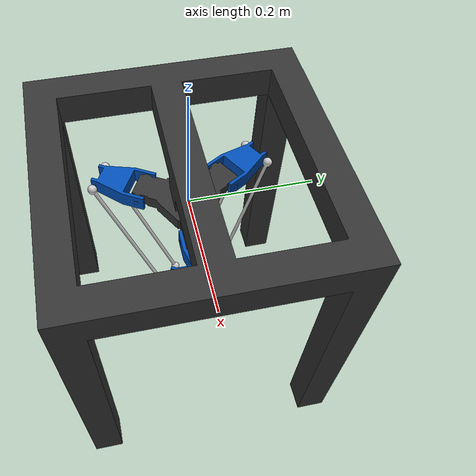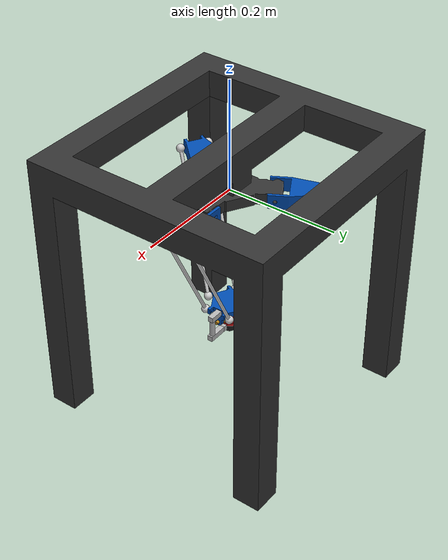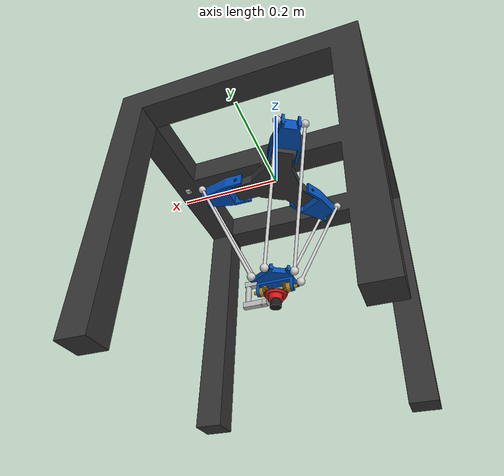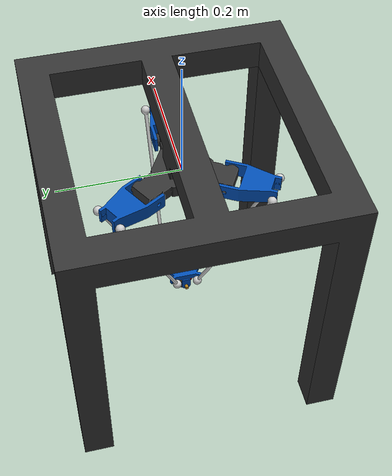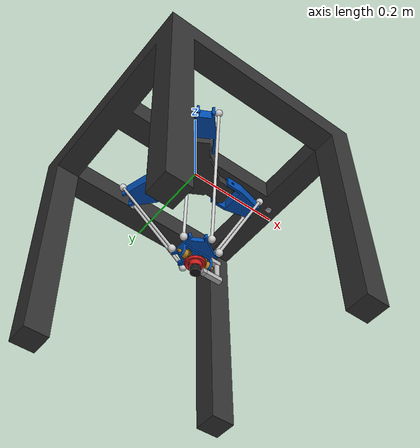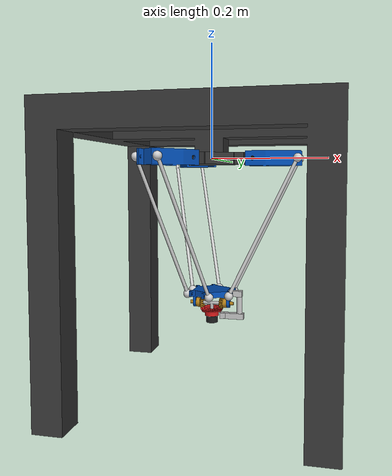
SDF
<?xml version="1.0"?>
<sdf version="1.6">
    <model name="delta_robot">
        <static>false</static>
        <self_collide>false</self_collide>

        <!-- ALL LINKS SECTION -->
        <link name="world_link" />
        <link name="base_link">
            <self_collide>false</self_collide>
            <pose>0.0 0.0 -0.059453642384105956 0.0 -0.0 0.0</pose>
            <inertial>
                <pose>0.0 0.0 0.0 0 0 0</pose>
                <mass>74.084375</mass>
                <inertia>
                    <ixx>4.027796531155149</ixx>
                    <ixy>0.0</ixy>
                    <ixz>0</ixz>
                    <iyy>4.096484031155156</iyy>
                    <iyz>0</iyz>
                    <izz>4.613305989583342</izz>
                </inertia>
            </inertial>
            <collision name="base_link_collision">
                <geometry>
                    <mesh>
                        <uri>package://delta_robot_description/meshes/base_link.stl</uri>
                        <scale>0.001 0.001 0.001</scale>
                    </mesh>
                </geometry>
            </collision>
            <visual name="base_link_visual">
                <geometry>
                    <mesh>
                        <uri>package://delta_robot_description/meshes/base_link.stl</uri>
                        <scale>0.001 0.001 0.001</scale>
                    </mesh>
                </geometry>
                <material>
                    <ambient>0.2 0.2 0.2 1</ambient>
                    <diffuse>0.2 0.2 0.2 1</diffuse>
                    <specular>0.5 0.5 0.5 1</specular>
                </material>
            </visual>
        </link>
        <link name="base_hex">
            <self_collide>false</self_collide>
            <pose>0 0 0 0 0 0</pose>
            <inertial>
                <pose>0 0 0 0 0 0</pose>
                <mass>1.9047631520333201</mass>
                <inertia>
                    <ixx>0.0026031670857326853</ixx>
                    <ixy>0</ixy>
                    <ixz>0</ixz>
                    <iyy>0.0026031670857326857</iyy>
                    <iyz>0</iyz>
                    <izz>0.00507804487380368</izz>
                </inertia>
            </inertial>
            <visual name="base_visual">
                <geometry>
                    <mesh>
                        <uri>package://delta_robot_description/meshes/base.stl</uri>
                        <scale>0.001 0.001 0.001</scale>
                    </mesh>
                </geometry>
                <material>
                    <ambient>0.2 0.2 0.2 1</ambient>
                    <diffuse>0.2 0.2 0.2 1</diffuse>
                    <specular>0.5 0.5 0.5 1</specular>
                </material>
            </visual>
        </link>
        <link name="eye_to_hand_cam">
            <pose relative_to="base_hex">0.2 0 0.035 0 1.5708 0</pose>
            <inertial>
                <mass>0.0001</mass>
                <inertia>
                    <ixx>1e-9</ixx>
                    <ixy>0</ixy>
                    <ixz>0</ixz>
                    <iyy>1e-9</iyy>
                    <iyz>0</iyz>
                    <izz>1e-9</izz>
                </inertia>
            </inertial>
            <collision name="camera_collision">
                <geometry>
                    <box>
                        <size>0.01 0.01 0.01</size>
                    </box>
                </geometry>
            </collision>
            <visual name="camera_visual">
                <geometry>
                    <box>
                        <size>0.01 0.01 0.01</size>
                    </box>
                </geometry>
            </visual>
            <sensor name="camera1" type="camera">
                <pose>0 0 0 0 0 0</pose>
                <topic>camera1/image_raw</topic>
                <update_rate>60.0</update_rate>
                <camera name="head1">
                    <horizontal_fov>1.3962634</horizontal_fov>
                    <image>
                        <width>800</width>
                        <height>800</height>
                        <format>R8G8B8</format>
                    </image>
                    <clip>
                        <near>0.02</near>
                        <far>300</far>
                    </clip>
                    <noise>
                        <type>gaussian</type>
                        <mean>0.0</mean>
                        <stddev>0.007</stddev>
                    </noise>
                </camera>
            </sensor>
        </link>
        <link name="forearm1">
            <self_collide>false</self_collide>
            <pose>0.07582126761579139 0.02650000029802317 0 0 0 0</pose>
            <inertial>
                <pose>0.0 0.0 0.0 0 0 0</pose>
                <mass>0.5187511910834867</mass>
                <inertia>
                    <ixx>0.00015919261328275726</ixx>
                    <ixy>0</ixy>
                    <ixz>0</ixz>
                    <iyy>0.00022207744067771388</iyy>
                    <iyz>0</iyz>
                    <izz>0.00032753770757601333</izz>
                </inertia>
            </inertial>
            <visual name="forearm1_visual">
                <pose>0.041901939908467044 -0.02578501478731749 0 0 0 0</pose>
                <geometry>
                    <mesh>
                        <uri>package://delta_robot_description/meshes/forearm1.stl</uri>
                        <scale>0.001 0.001 0.001</scale>
                    </mesh>
                </geometry>
                <material>
                    <ambient>0.0 0.3 0.7 1</ambient>
                    <diffuse>0.0 0.3 0.7 1</diffuse>
                    <specular>0.8 0.8 0.8 1</specular>
                </material>
            </visual>
        </link>
        <link name="forearm2">
            <self_collide>false</self_collide>
            <pose>-0.060860307266279 0.052413143753402 0 0 0 0</pose>
            <inertial>
                <pose>0.0 0.0 0.0 0 0 0</pose>
                <mass>0.51875119107172</mass>
                <inertia>
                    <ixx>0.00020635611231124287</ixx>
                    <ixy>2.722999916731084e-05</ixy>
                    <ixz>0</ixz>
                    <iyy>0.00017491394163174725</iyy>
                    <iyz>0</iyz>
                    <izz>0.000327537707552888</izz>
                </inertia>
            </inertial>
            <visual name="forearm2_visual">
                <pose>0.0013795078890995872 0.049180651821708 0 0 0 0</pose>
                <geometry>
                    <mesh>
                        <uri>package://delta_robot_description/meshes/forearm2.stl</uri>
                        <scale>0.001 0.001 0.001</scale>
                    </mesh>
                </geometry>
                <material>
                    <ambient>0.0 0.3 0.7 1</ambient>
                    <diffuse>0.0 0.3 0.7 1</diffuse>
                    <specular>0.8 0.8 0.8 1</specular>
                </material>
            </visual>
        </link>
        <link name="forearm3">
            <self_collide>false</self_collide>
            <pose>-0.014960960349512404 -0.07891314405142537 0.0 0 0 0</pose>
            <inertial>
                <pose>0.0 0.0 0.0 0 0 0</pose>
                <mass>0.518751191076026</mass>
                <inertia>
                    <ixx>0.0002063563553324457</ixx>
                    <ixy>-2.7229858861725022e-05</ixy>
                    <ixz>0</ixz>
                    <iyy>0.0001749136986178364</iyy>
                    <iyz>0</iyz>
                    <izz>0.00032753770756010993</izz>
                </inertia>
            </inertial>
            <visual name="forearm3_visual">
                <pose>-0.043281447796773696 -0.02339563703450904 0.0 0 0 0</pose>
                <geometry>
                    <mesh>
                        <uri>package://delta_robot_description/meshes/forearm3.stl</uri>
                        <scale>0.001 0.001 0.001</scale>
                    </mesh>
                </geometry>
                <material>
                    <ambient>0.0 0.3 0.7 1</ambient>
                    <diffuse>0.0 0.3 0.7 1</diffuse>
                    <specular>0.8 0.8 0.8 1</specular>
                </material>
            </visual>
        </link>

        <link name="arm1">
            <self_collide>false</self_collide>
            <pose>0.150821276752066 -0.0247850007972447853 0.00000000000000001 0 0 0</pose>
            <inertial>
                <pose>0.0 0.0 0.0 0 0 0</pose>
                <mass>0.08501792510863404</mass>
                <inertia>
                    <ixx>0.0006610833522394115</ixx>
                    <ixy>0</ixy>
                    <ixz>-0.00032162896696378846</ixz>
                    <iyy>0.0008177639729221635</iyy>
                    <iyz>0</iyz>
                    <izz>0.00015756561652582377</izz>
                </inertia>
            </inertial>
            <visual name="arm1_visual">
                <pose>-0.05775519384269504 -0.0003574989405490747 -0.11855347169928133 0 0 0</pose>
                <geometry>
                    <mesh>
                        <uri>package://delta_robot_description/meshes/arm1.stl</uri>
                        <scale>0.001 0.001 0.001</scale>
                    </mesh>
                </geometry>
                <material>
                    <ambient>0.8 0.8 0.8 1</ambient>
                    <diffuse>0.8 0.8 0.8 1</diffuse>
                    <specular>0.5 0.5 0.5 1</specular>
                </material>
            </visual>
        </link>
        <link name="arm2">
            <self_collide>false</self_collide>
            <pose>0.1508212767520659137 0.0262150008651660243 0.0000000000000000139 0 0 0</pose>
            <inertial>
                <pose>0.0 0.0 0.0 0 0 0</pose>
                <mass>0.08501792510866066</mass>
                <inertia>
                    <ixx>0.0006610833521857737</ixx>
                    <ixy>0</ixy>
                    <ixz>-0.0003216289678737782</ixz>
                    <iyy>0.0008177639737980705</iyy>
                    <iyz>0</iyz>
                    <izz>0.00015756561749766327</izz>
                </inertia>
            </inertial>
            <visual name="arm2_visual">
                <pose>-0.0577551938243513335 -0.0003575000750835722 -0.1185534717523515774 -0 -0 -0</pose>
                <geometry>
                    <mesh>
                        <uri>package://delta_robot_description/meshes/arm2.stl</uri>
                        <scale>0.001 0.001 0.001</scale>
                    </mesh>
                </geometry>
                <material>
                    <ambient>0.8 0.8 0.8 1</ambient>
                    <diffuse>0.8 0.8 0.8 1</diffuse>
                    <specular>0.5 0.5 0.5 1</specular>
                </material>
            </visual>
        </link>
        <link name="arm3">
            <self_collide>false</self_collide>
            <pose>-0.053946198052802014 0.14300755749712088 0.000000000000000014 0 0 0</pose>
            <inertial>
                <pose>0.0 0.0 0.0 0 0 0</pose>
                <mass>0.08501792510896487</mass>
                <inertia>
                    <ixx>0.0007777538800039391</ixx>
                    <ixy>6.832963731447462e-05</ixy>
                    <ixz>0.00016253861417716366</ixz>
                    <iyy>0.0007010934438627217</iyy>
                    <iyz>-0.00027754342934095954</iyz>
                    <izz>0.00015756561739719226</izz>
                </inertia>
            </inertial>
            <visual name="arm3_visual">
                <pose>0.029187200504109275 -0.04983871541849675 -0.118553471658051079 -0 -0 -0</pose>
                <geometry>
                    <mesh>
                        <uri>package://delta_robot_description/meshes/arm3.stl</uri>
                        <scale>0.001 0.001 0.001</scale>
                    </mesh>
                </geometry>
                <material>
                    <ambient>0.8 0.8 0.8 1</ambient>
                    <diffuse>0.8 0.8 0.8 1</diffuse>
                    <specular>0.5 0.5 0.5 1</specular>
                </material>
            </visual>
        </link>
        <link name="arm4">
            <self_collide>false</self_collide>
            <pose>-0.098113495085500615 0.117507556665914045 0.000000000000000014 0 0 0</pose>
            <inertial>
                <pose>0.0 0.0 0.0 0 0 0</pose>
                <mass>0.0850179251086646</mass>
                <inertia>
                    <ixx>0.000777753878667458</ixx>
                    <ixy>6.832963918442215e-05</ixy>
                    <ixz>0.00016253861925255046</ixz>
                    <iyy>0.0007010934459520924</iyy>
                    <iyz>-0.0002775434281816356</iyz>
                    <izz>0.00015756561901733725</izz>
                </inertia>
            </inertial>
            <visual name="arm4_visual">
                <pose>0.029187201419744097 -0.04983871512278204 -0.118553471622729029 -0 -0 -0</pose>
                <geometry>
                    <mesh>
                        <uri>package://delta_robot_description/meshes/arm4.stl</uri>
                        <scale>0.001 0.001 0.001</scale>
                    </mesh>
                </geometry>
                <material>
                    <ambient>0.8 0.8 0.8 1</ambient>
                    <diffuse>0.8 0.8 0.8 1</diffuse>
                    <specular>0.5 0.5 0.5 1</specular>
                </material>
            </visual>
        </link>
        <link name="arm5">
            <self_collide>false</self_collide>
            <pose>-0.096875078699264386 -0.118222556699869891 0.000000000000000028 0 0 0</pose>
            <inertial>
                <pose>0.0 0.0 0.0 0 0 0</pose>
                <mass>0.08501792510922251</mass>
                <inertia>
                    <ixx>0.000779433754412613</ixx>
                    <ixy>-6.735976148530107e-05</ixy>
                    <ixz>0.00015909035445113126</ixz>
                    <iyy>0.0006994135701053404</iyy>
                    <iyz>0.0002795342829744094</iyz>
                    <izz>0.00015756561726048722</izz>
                </inertia>
            </inertial>
            <visual name="arm5_visual">
                <pose>0.028567993470289876 0.050196214684380139 -0.118553471706085545 -0 -0 -0</pose>
                <geometry>
                    <mesh>
                        <uri>package://delta_robot_description/meshes/arm5.stl</uri>
                        <scale>0.001 0.001 0.001</scale>
                    </mesh>
                </geometry>
                <material>
                    <ambient>0.8 0.8 0.8 1</ambient>
                    <diffuse>0.8 0.8 0.8 1</diffuse>
                    <specular>0.5 0.5 0.5 1</specular>
                </material>
            </visual>
        </link>
        <link name="arm6">
            <self_collide>false</self_collide>
            <pose>-0.05270778166581999 -0.1437225575297798 0.00000000000149622 0 0 0</pose>
            <inertial>
                <pose>0.0 0.0 0.0 0 0 0</pose>
                <mass>0.08501792512900125</mass>
                <inertia>
                    <ixx>0.0007794337586124258</ixx>
                    <ixy>-6.735976102620172e-05</ixy>
                    <ixz>0.00015909035164004187</ixz>
                    <iyy>0.0006994135700703405</iyy>
                    <iyz>0.00027953428658388565</iyz>
                    <izz>0.00015756561862866143</izz>
                </inertia>
            </inertial>
            <visual name="arm6_visual">
                <pose>0.02856799290364426 0.05019621511416267 -0.11855347175941486 -0 -0 -0</pose>
                <geometry>
                    <mesh>
                        <uri>package://delta_robot_description/meshes/arm6.stl</uri>
                        <scale>0.001 0.001 0.001</scale>
                    </mesh>
                </geometry>
                <material>
                    <ambient>0.8 0.8 0.8 1</ambient>
                    <diffuse>0.8 0.8 0.8 1</diffuse>
                    <specular>0.5 0.5 0.5 1</specular>
                </material>
            </visual>
        </link>
        <link name="dummy_arm1">
            <pose relative_to="EEBase">0.035310889540041704 -0.02549999943386602 0 0 0 0</pose>
            <inertial>
                <mass>0.0001</mass>
                <inertia>
                    <ixx>1e-9</ixx>
                    <ixy>0</ixy>
                    <ixz>0</ixz>
                    <iyy>1e-9</iyy>
                    <iyz>0</iyz>
                    <izz>1e-9</izz>
                </inertia>
            </inertial>
        </link>
        <link name="dummy_arm2">
            <pose relative_to="EEBase">0.035310888722048364 0.025500000566133628 0 0 0 0</pose>
            <inertial>
                <mass>0.0001</mass>
                <inertia>
                    <ixx>1e-9</ixx>
                    <ixy>0</ixy>
                    <ixz>0</ixz>
                    <iyy>1e-9</iyy>
                    <iyz>0</iyz>
                    <izz>1e-9</izz>
                </inertia>
            </inertial>
        </link>
        <link name="dummy_arm3">
            <pose relative_to="EEBase">0.004428202533889717 0.043330127089725994 0 0 0 0</pose>
            <inertial>
                <mass>0.0001</mass>
                <inertia>
                    <ixx>1e-9</ixx>
                    <ixy>0</ixy>
                    <ixz>0</ixz>
                    <iyy>1e-9</iyy>
                    <iyz>0</iyz>
                    <izz>1e-9</izz>
                </inertia>
            </inertial>
        </link>
        <link name="dummy_arm4">
            <pose relative_to="EEBase">-0.0397390926501204 0.01783012638132276 0 0 0 0</pose>
            <inertial>
                <mass>0.0001</mass>
                <inertia>
                    <ixx>1e-9</ixx>
                    <ixy>0</ixy>
                    <ixz>0</ixz>
                    <iyy>1e-9</iyy>
                    <iyz>0</iyz>
                    <izz>1e-9</izz>
                </inertia>
            </inertial>
        </link>
        <link name="dummy_arm5">
            <pose relative_to="EEBase">-0.03973909207816269 -0.017830127656521706 0 0 0 0</pose>
            <inertial>
                <mass>0.0001</mass>
                <inertia>
                    <ixx>1e-9</ixx>
                    <ixy>0</ixy>
                    <ixz>0</ixz>
                    <iyy>1e-9</iyy>
                    <iyz>0</iyz>
                    <izz>1e-9</izz>
                </inertia>
            </inertial>
        </link>
        <link name="dummy_arm6">
            <pose relative_to="EEBase">0.004428203923840525 -0.04333012694811848 0 0 0 0</pose>
            <inertial>
                <mass>0.0001</mass>
                <inertia>
                    <ixx>1e-9</ixx>
                    <ixy>0</ixy>
                    <ixz>0</ixz>
                    <iyy>1e-9</iyy>
                    <iyz>0</iyz>
                    <izz>1e-9</izz>
                </inertia>
            </inertial>
        </link>
        <link name="EEBase">
            <self_collide>false</self_collide>
            <pose>0 0 -0.2371069434554458 0.0 -0.0 0.0</pose>
            <inertial>
                <pose>0.0 0.0 0.0 0 0 0</pose>
                <mass>1.3053488104998772</mass>
                <inertia>
                    <ixx>0.00011281937159312463</ixx>
                    <ixy>0</ixy>
                    <ixz>0</ixz>
                    <iyy>0.00011281937159499478</iyy>
                    <iyz>0</iyz>
                    <izz>0.000220801824329689</izz>
                </inertia>
            </inertial>
            <visual name="EEBase_visual">
                <pose>0 0.0 0.0 0 0 0</pose>
                <geometry>
                    <mesh>
                        <uri>package://delta_robot_description/meshes/EEBase.stl</uri>
                        <scale>0.001 0.001 0.001</scale>
                    </mesh>
                </geometry>
                <material>
                    <ambient>0.0 0.3 0.7 1</ambient>
                    <diffuse>0.0 0.3 0.7 1</diffuse>
                    <specular>0.8 0.8 0.8 1</specular>
                </material>
            </visual>
        </link>

        <link name="camera_holder">
            <pose relative_to="EEBase">0.04 0 0 0 0 0</pose>
            <inertial>
                <mass>0.0001</mass>
                <inertia>
                    <ixx>1e-9</ixx>
                    <ixy>0</ixy>
                    <ixz>0</ixz>
                    <iyy>1e-9</iyy>
                    <iyz>0</iyz>
                    <izz>1e-9</izz>
                </inertia>
            </inertial>

            <collision name="camera_holder_collision">
                <geometry>
                    <box>
                        <size>0.03 0.01 0.01</size>
                    </box>
                </geometry>
            </collision>

            <visual name="camera_holder_visual">
                <geometry>
                    <box>
                        <size>0.03 0.01 0.01</size>
                    </box>
                </geometry>
            </visual>
        </link>
        <link name="camera_stick">
            <pose relative_to="camera_holder">0.01 0 -0.02 0 0 0</pose>
            <inertial>
                <mass>0.0001</mass>
                <inertia>
                    <ixx>1e-9</ixx>
                    <ixy>0</ixy>
                    <ixz>0</ixz>
                    <iyy>1e-9</iyy>
                    <iyz>0</iyz>
                    <izz>1e-9</izz>
                </inertia>
            </inertial>

            <collision name="camera_stick_collision">
                <geometry>
                    <cylinder>
                        <radius>0.005</radius>
                        <length>0.035</length>
                    </cylinder>
                </geometry>
            </collision>

            <visual name="camera_stick_visual">
                <geometry>
                    <cylinder>
                        <radius>0.005</radius>
                        <length>0.035</length>
                    </cylinder>
                </geometry>
            </visual>
        </link>
        <link name="camera_bar">
            <pose relative_to="camera_stick">-0.01 0 -0.02 0 0 0</pose>
            <inertial>
                <mass>0.0001</mass>
                <inertia>
                    <ixx>1e-9</ixx>
                    <ixy>0</ixy>
                    <ixz>0</ixz>
                    <iyy>1e-9</iyy>
                    <iyz>0</iyz>
                    <izz>1e-9</izz>
                </inertia>
            </inertial>

            <collision name="camera_bar_collision">
                <geometry>
                    <box>
                        <size>0.035 0.01 0.01</size>
                    </box>
                </geometry>
            </collision>

            <visual name="camera_bar_visual">
                <geometry>
                    <box>
                        <size>0.035 0.01 0.01</size>
                    </box>
                </geometry>
            </visual>
        </link>
        <link name="camera">
            <pose relative_to="camera_bar">-0.02 0 0 0 1.5708 0</pose>
            <inertial>
                <mass>0.0001</mass>
                <inertia>
                    <ixx>1e-9</ixx>
                    <ixy>0</ixy>
                    <ixz>0</ixz>
                    <iyy>1e-9</iyy>
                    <iyz>0</iyz>
                    <izz>1e-9</izz>
                </inertia>
            </inertial>
            <collision name="camera_collision">
                <geometry>
                    <box>
                        <size>0.01 0.01 0.01</size>
                    </box>
                </geometry>
            </collision>
            <visual name="camera_visual">
                <geometry>
                    <box>
                        <size>0.01 0.01 0.01</size>
                    </box>
                </geometry>
            </visual>
            <sensor name="camera1" type="camera">
                <pose>0 0 0 0 0 0</pose>
                <topic>camera/image_raw</topic>
                <update_rate>60.0</update_rate>
                <camera name="head">
                    <horizontal_fov>1.3962634</horizontal_fov>
                    <image>
                        <width>800</width>
                        <height>800</height>
                        <format>R8G8B8</format>
                    </image>
                    <clip>
                        <near>0.02</near>
                        <far>300</far>
                    </clip>
                    <noise>
                        <type>gaussian</type>
                        <mean>0.0</mean>
                        <stddev>0.007</stddev>
                    </noise>
                </camera>
            </sensor>
        </link>

        <link name="Bevel1">
            <self_collide>false</self_collide>
            <pose>0.022598238942588337 0 -0.25555 0.0 -0.0 0.0</pose>
            <inertial>
                <pose>0.0 0.0 0.0 0 0 0</pose>
                <mass>0.022887588344720437</mass>
                <inertia>
                    <ixx>8.160533925641644e-07</ixx>
                    <ixy>0</ixy>
                    <ixz>0</ixz>
                    <iyy>1.0090840794921619e-06</iyy>
                    <iyz>0</iyz>
                    <izz>1.0090818180532715e-06</izz>
                </inertia>
            </inertial>
            <visual name="Bevel1_visual">
                <geometry>
                    <mesh>
                        <uri>package://delta_robot_description/meshes/Bevel1.stl</uri>
                        <scale>0.001 0.001 0.001</scale>
                    </mesh>
                </geometry>
                <material>
                    <ambient>0.7 0.5 0.1 1</ambient>
                    <diffuse>0.7 0.5 0.1 1</diffuse>
                    <specular>0.9 0.9 0.9 1</specular>
                </material>
            </visual>
        </link>
        <link name="Bevel2">
            <self_collide>false</self_collide>
            <pose>-0.022598396462524938 0 -0.25555 0.0 -0.0 0.0</pose>
            <inertial>
                <pose>0.0 0.0 0.0 0 0 0</pose>
                <mass>0.02288830078604533</mass>
                <inertia>
                    <ixx>8.161191467143781e-07</ixx>
                    <ixy>0</ixy>
                    <ixz>0</ixz>
                    <iyy>1.009129701681566e-06</iyy>
                    <iyz>0</iyz>
                    <izz>1.0091285363646813e-06</izz>
                </inertia>
            </inertial>
            <visual name="Bevel2_visual">
                <geometry>
                    <mesh>
                        <uri>package://delta_robot_description/meshes/Bevel2.stl</uri>
                        <scale>0.001 0.001 0.001</scale>
                    </mesh>
                </geometry>
                <material>
                    <ambient>0.7 0.5 0.1 1</ambient>
                    <diffuse>0.7 0.5 0.1 1</diffuse>
                    <specular>0.9 0.9 0.9 1</specular>
                </material>
            </visual>
        </link>
        <link name="T">
            <self_collide>false</self_collide>
            <pose>0.0 0.0 -0.260598116 0.0 -0.0 0.0</pose>
            <inertial>
                <pose>0.0 0.0 0.0 0 0 0</pose>
                <mass>0.014030555092456744</mass>
                <inertia>
                    <ixx>9.053309943784172e-07</ixx>
                    <ixy>0</ixy>
                    <ixz>0</ixz>
                    <iyy>2.1020064052040157e-06</iyy>
                    <iyz>0</iyz>
                    <izz>1.260672827513e-06</izz>
                </inertia>
            </inertial>
            <visual name="T_visual">
                <geometry>
                    <mesh>
                        <uri>package://delta_robot_description/meshes/T.stl</uri>
                        <scale>0.001 0.001 0.001</scale>
                    </mesh>
                </geometry>
                <material>
                    <ambient>0.7 0.7 0.7 1</ambient>
                    <diffuse>0.7 0.7 0.7 1</diffuse>
                    <specular>0.8 0.8 0.8 1</specular>
                </material>
            </visual>
        </link>
        <link name="EE">
            <self_collide>false</self_collide>
            <pose>0.00011235145603943191 0.00018482718621420783 -0.270099331 0.0 -0.0 0.0</pose>
            <inertial>
                <pose>0.0 0.0 0.0 0 0 0</pose>
                <mass>0.061950102367088596</mass>
                <inertia>
                    <ixx>5.594753854607149e-06</ixx>
                    <ixy>0</ixy>
                    <ixz>0</ixz>
                    <iyy>5.5349716777605805e-06</iyy>
                    <iyz>0</iyz>
                    <izz>9.285799729941814e-06</izz>
                </inertia>
            </inertial>
            <visual name="EE_visual">
                <geometry>
                    <mesh>
                        <uri>package://delta_robot_description/meshes/EE.stl</uri>
                        <scale>0.001 0.001 0.001</scale>
                    </mesh>
                </geometry>
                <material>
                    <ambient>0.8 0.1 0.1 1</ambient>
                    <diffuse>0.8 0.1 0.1 1</diffuse>
                    <specular>0.5 0.5 0.5 1</specular>
                    <emissive>0 0 0 1</emissive>
                </material>
            </visual>
        </link>

        <link name="vacuum_gripper">
            <pose relative_to="EE">0 0 -0.01 0 0 0</pose>
            <inertial>
                <mass>0.0001</mass>
                <inertia>
                    <ixx>1e-6</ixx>
                    <ixy>0</ixy>
                    <ixz>0</ixz>
                    <iyy>1e-6</iyy>
                    <iyz>0</iyz>
                    <izz>1e-6</izz>
                </inertia>
            </inertial>
            <visual name="vacuum_gripper_visual">
                <geometry>
                    <cylinder>
                        <radius>0.01</radius>
                        <length>0.02</length>
                    </cylinder>
                </geometry>
                <material>
                    <ambient>0.1 0.1 0.1 1</ambient>
                    <diffuse>0.1 0.1 0.1 1</diffuse>
                </material>
            </visual>
            <collision name="vacuum_gripper_collision">
                <geometry>
                    <cylinder>
                        <radius>0.01</radius>
                        <length>0.02</length>
                    </cylinder>
                </geometry>
            </collision>
        </link>

        <!-- ALL JOINTS SECTION -->
        <joint name="virtual_joint" type="fixed">
            <parent>world_link</parent>
            <child>base_link</child>
        </joint>
        <joint name="base_joint" type="fixed">
            <parent>base_link</parent>
            <child>base_hex</child>
            <pose>0 0 0 0 0 0</pose>
        </joint>

        <joint name="eye_to_hand_cam_joint" type="fixed">
            <parent>base_link</parent>
            <child>eye_to_hand_cam</child>
            <pose>0 0 0 0 0 0</pose>
        </joint>

        <joint name="jbf1" type="revolute">
            <parent>base_hex</parent>
            <child>forearm1</child>
            <pose>0 0 0 0 0 0</pose>
            <axis>
                <xyz>0 1 0</xyz>
                <limit>
                    <lower>-2.007</lower>
                    <upper>2.007</upper>
                    <effort>2.0</effort>
                    <velocity>5.0</velocity>
                </limit>
                <dynamics>
                    <damping>0.1</damping>
                    <friction>0.05</friction>
                </dynamics>
            </axis>
        </joint>
        <joint name="jbf2" type="revolute">
            <parent>base_hex</parent>
            <child>forearm2</child>
            <pose>0 0 0 0 0 0</pose>
            <axis>
                <xyz>-0.866025403784437 -0.5 0</xyz>
                <limit>
                    <lower>-2.007</lower>
                    <upper>2.007</upper>
                    <effort>2.0</effort>
                    <velocity>5.0</velocity>
                </limit>
                <dynamics>
                    <damping>0.1</damping>
                    <friction>0.05</friction>
                </dynamics>
            </axis>
        </joint>
        <joint name="jbf3" type="revolute">
            <parent>base_hex</parent>
            <child>forearm3</child>
            <pose>0.0 0.0 0.0 0 0 0</pose>
            <axis>
                <xyz>0.866025403784438 -0.5 0</xyz>
                <limit>
                    <lower>-2.007</lower>
                    <upper>2.007</upper>
                    <effort>2.0</effort>
                    <velocity>5.0</velocity>
                </limit>
                <dynamics>
                    <damping>0.1</damping>
                    <friction>0.05</friction>
                </dynamics>
            </axis>
        </joint>

        <joint name="ball1" type="ball">
            <parent>forearm1</parent>
            <child>arm1</child>
            <pose>0.0 0.0 0.0 0 0 0</pose>
        </joint>
        <joint name="ball2" type="ball">
            <parent>forearm1</parent>
            <child>arm2</child>
            <pose>0.0 0.0 0.0 0 0 0</pose>
        </joint>
        <joint name="ball3" type="ball">
            <parent>forearm2</parent>
            <child>arm3</child>
            <pose>-0.0 0.0 0.0 0 0 0</pose>
        </joint>
        <joint name="ball4" type="ball">
            <parent>forearm2</parent>
            <child>arm4</child>
            <pose>-0.0 0.0 0.0 0 0 0</pose>
        </joint>
        <joint name="ball5" type="ball">
            <parent>forearm3</parent>
            <child>arm5</child>
            <pose>-0.0 -0.0 0.0 0 0 0</pose>
        </joint>
        <joint name="ball6" type="ball">
            <parent>forearm3</parent>
            <child>arm6</child>
            <pose>-0.0 0.0 0.0 0 0 0</pose>
        </joint>
        <joint name="ball7" type="ball">
            <parent>arm5</parent>
            <child>dummy_arm5</child>
            <pose>-0.0 0.0 0.0 0 0 0</pose>
        </joint>

        <joint name="EEBase_to_dummy1" type="ball">
            <parent>EEBase</parent>
            <child>dummy_arm1</child>
        </joint>
        <joint name="EEBase_to_dummy2" type="ball">
            <parent>EEBase</parent>
            <child>dummy_arm2</child>
        </joint>
        <joint name="EEBase_to_dummy3" type="ball">
            <parent>EEBase</parent>
            <child>dummy_arm3</child>
        </joint>
        <joint name="EEBase_to_dummy4" type="ball">
            <parent>EEBase</parent>
            <child>dummy_arm4</child>
        </joint>
        <joint name="EEBase_to_dummy5" type="fixed">
            <parent>dummy_arm5</parent>
            <child>EEBase</child>
        </joint>
        <joint name="EEBase_to_dummy6" type="ball">
            <parent>EEBase</parent>
            <child>dummy_arm6</child>
        </joint>

        <joint name="camera_joint" type="fixed">
            <parent>EEBase</parent>
            <child>camera_holder</child>
        </joint>
        <joint name="camera_stick_joint" type="fixed">
            <parent>camera_holder</parent>
            <child>camera_stick</child>
        </joint>
        <joint name="camera_bar_joint" type="fixed">
            <parent>camera_stick</parent>
            <child>camera_bar</child>
        </joint>
        <joint name="camera_joint_final" type="fixed">
            <parent>camera_bar</parent>
            <child>camera</child>
        </joint>

        <joint name="Bevelj1" type="revolute">
            <parent>EEBase</parent>
            <child>Bevel1</child>
            <axis>
                <xyz>1 0 0</xyz>
                <limit>
                    <lower>-3</lower>
                    <upper>3</upper>
                    <effort>50.0</effort>
                    <velocity>10.0</velocity>
                </limit>
                <dynamics>
                    <damping>1.0</damping>
                    <friction>0.01</friction>
                </dynamics>
            </axis>
        </joint>
        <joint name="Bevelj2" type="revolute">
            <parent>EEBase</parent>
            <child>Bevel2</child>
            <axis>
                <xyz>-1 0 0</xyz>
                <limit>
                    <lower>-3</lower>
                    <upper>3</upper>
                    <effort>50.0</effort>
                    <velocity>10.0</velocity>
                </limit>
                <dynamics>
                    <damping>1.0</damping>
                    <friction>0.01</friction>
                </dynamics>
            </axis>
        </joint>
        <joint name="Tj1" type="revolute">
            <parent>EEBase</parent>
            <child>T</child>
            <pose>0.0 0.0 0.005048116 0 0 0</pose>
            <axis>
                <xyz>1 0 0</xyz>
                <limit>
                    <lower>-3.14159</lower>
                    <upper>3.14159</upper>
                    <effort>50.0</effort>
                    <velocity>10.0</velocity>
                </limit>
                <dynamics>
                    <damping>5.0</damping>
                    <friction>0.01</friction>
                </dynamics>
                <use_parent_model_frame>0</use_parent_model_frame>
            </axis>
        </joint>
        <joint name="BeveljEE" type="revolute">
            <parent>T</parent>
            <child>EE</child>
            <axis>
                <xyz>0 0 1</xyz>
                <limit>
                    <lower>-3.14159</lower>
                    <upper>3.14159</upper>
                    <effort>50.0</effort>
                    <velocity>10.0</velocity>
                </limit>
                <dynamics>
                    <damping>5.0</damping>
                    <friction>0.01</friction>
                </dynamics>
                <use_parent_model_frame>0</use_parent_model_frame>
            </axis>
        </joint>

        <joint name="vacuum_gripper_joint" type="fixed">
            <parent>EE</parent>
            <child>vacuum_gripper</child>
        </joint>

        <!-- ALL PLUGINS SECTION -->
        <plugin filename="libgz-sim-detachable-joint-system.so"
            name="gz::sim::systems::DetachableJoint">
            <parent_link>dummy_arm1</parent_link>
            <child_model>delta_robot</child_model>
            <child_link>arm1</child_link>
            <detach_topic>/delta/detach_arm1</detach_topic>
            <attach_topic>/delta/attach_arm1</attach_topic>
        </plugin>
        <plugin filename="libgz-sim-detachable-joint-system.so"
            name="gz::sim::systems::DetachableJoint">
            <parent_link>dummy_arm2</parent_link>
            <child_model>delta_robot</child_model>
            <child_link>arm2</child_link>
            <detach_topic>/delta/detach_arm2</detach_topic>
            <attach_topic>/delta/attach_arm2</attach_topic>
        </plugin>
        <plugin filename="libgz-sim-detachable-joint-system.so"
            name="gz::sim::systems::DetachableJoint">
            <parent_link>dummy_arm3</parent_link>
            <child_model>delta_robot</child_model>
            <child_link>arm3</child_link>
            <detach_topic>/delta/detach_arm3</detach_topic>
            <attach_topic>/delta/attach_arm3</attach_topic>
        </plugin>
        <plugin filename="libgz-sim-detachable-joint-system.so"
            name="gz::sim::systems::DetachableJoint">
            <parent_link>dummy_arm4</parent_link>
            <child_model>delta_robot</child_model>
            <child_link>arm4</child_link>
            <detach_topic>/delta/detach_arm4</detach_topic>
            <attach_topic>/delta/attach_arm4</attach_topic>
        </plugin>
        <plugin filename="libgz-sim-detachable-joint-system.so"
            name="gz::sim::systems::DetachableJoint">
            <parent_link>dummy_arm6</parent_link>
            <child_model>delta_robot</child_model>
            <child_link>arm6</child_link>
            <detach_topic>/delta/detach_arm6</detach_topic>
            <attach_topic>/delta/attach_arm6</attach_topic>
        </plugin>

        <plugin filename="gz-sim-joint-trajectory-controller-system"
            name="gz::sim::systems::JointTrajectoryController">
            <joint_name>jbf1</joint_name>
            <initial_position>0.0</initial_position>
            <position_p_gain>50</position_p_gain>
            <position_i_gain>5.0</position_i_gain>
            <position_d_gain>2.0</position_d_gain>
            <position_i_min>-5</position_i_min>
            <position_i_max>5</position_i_max>
            <position_cmd_min>-2.0</position_cmd_min>
            <position_cmd_max>2.0</position_cmd_max>

            <joint_name>jbf2</joint_name>
            <initial_position>0.0</initial_position>
            <position_p_gain>50</position_p_gain>
            <position_i_gain>5.0</position_i_gain>
            <position_d_gain>2.0</position_d_gain>
            <position_i_min>-5</position_i_min>
            <position_i_max>5</position_i_max>
            <position_cmd_min>-2.0</position_cmd_min>
            <position_cmd_max>2.0</position_cmd_max>

            <joint_name>jbf3</joint_name>
            <initial_position>0.0</initial_position>
            <position_p_gain>50</position_p_gain>
            <position_i_gain>5.0</position_i_gain>
            <position_d_gain>2.0</position_d_gain>
            <position_i_min>-5</position_i_min>
            <position_i_max>5</position_i_max>
            <position_cmd_min>-2.0</position_cmd_min>
            <position_cmd_max>2.0</position_cmd_max>

            <joint_name>Bevelj1</joint_name>
            <initial_position>0.0</initial_position>
            <position_p_gain>500</position_p_gain>
            <position_i_gain>5.0</position_i_gain>
            <position_d_gain>2.0</position_d_gain>
            <position_i_min>-5</position_i_min>
            <position_i_max>5</position_i_max>
            <position_cmd_min>-20.0</position_cmd_min>
            <position_cmd_max>20.0</position_cmd_max>

            <joint_name>Bevelj2</joint_name>
            <initial_position>0.0</initial_position>
            <position_p_gain>500</position_p_gain>
            <position_i_gain>5.0</position_i_gain>
            <position_d_gain>2.0</position_d_gain>
            <position_i_min>-5</position_i_min>
            <position_i_max>5</position_i_max>
            <position_cmd_min>-20.0</position_cmd_min>
            <position_cmd_max>20.0</position_cmd_max>

            <joint_name>BeveljEE</joint_name>
            <initial_position>0.0</initial_position>
            <position_p_gain>100</position_p_gain>
            <position_i_gain>5.0</position_i_gain>
            <position_d_gain>5.0</position_d_gain>
            <position_i_min>-5</position_i_min>
            <position_i_max>5</position_i_max>

            <joint_name>Tj1</joint_name>
            <initial_position>0.0</initial_position>
            <position_p_gain>100</position_p_gain>
            <position_i_gain>5.0</position_i_gain>
            <position_d_gain>5.0</position_d_gain>
            <position_i_min>-5</position_i_min>
            <position_i_max>5</position_i_max>
        </plugin>

        <plugin filename="gz-sim-joint-state-publisher-system"
            name="gz::sim::systems::JointStatePublisher">
        </plugin>

        <plugin filename="gz-sim-pose-publisher-system" name="gz::sim::systems::PosePublisher">
            <publish_link_pose>true</publish_link_pose>
            <use_pose_vector_msg>true</use_pose_vector_msg>
            <static_publisher>false</static_publisher>
            <static_update_frequency>100</static_update_frequency>
        </plugin>

        <plugin filename="libsuction_plugin.so" name="gz::sim::v8::systems::SuctionPlugin">
            <suction_topic>/suction/enable</suction_topic>
            <link_name>vacuum_gripper</link_name>
            <use_suction_radius>true</use_suction_radius>
            <suction_radius>0.062</suction_radius>
            <suction_force>5.0</suction_force>
        </plugin>
    </model>
</sdf>
